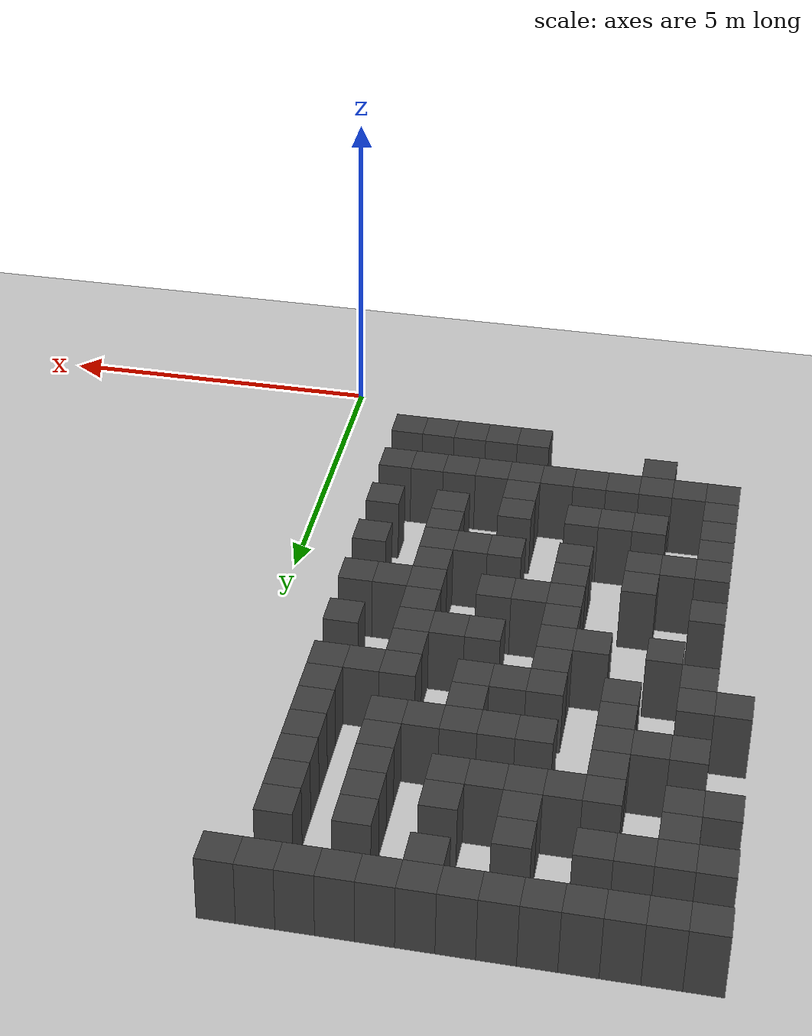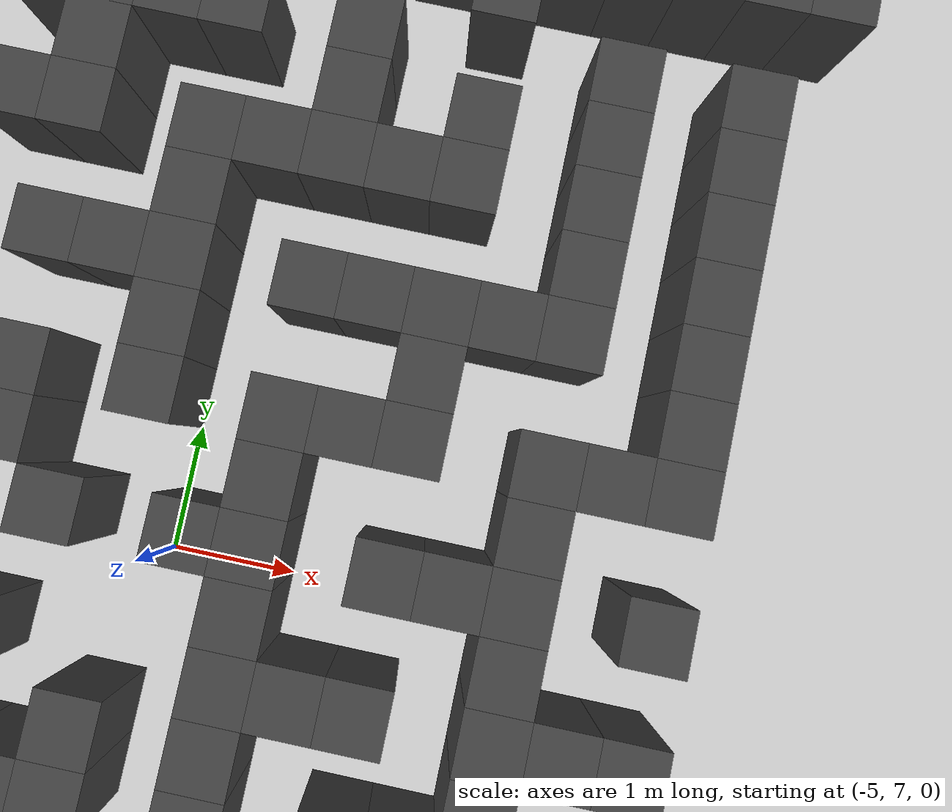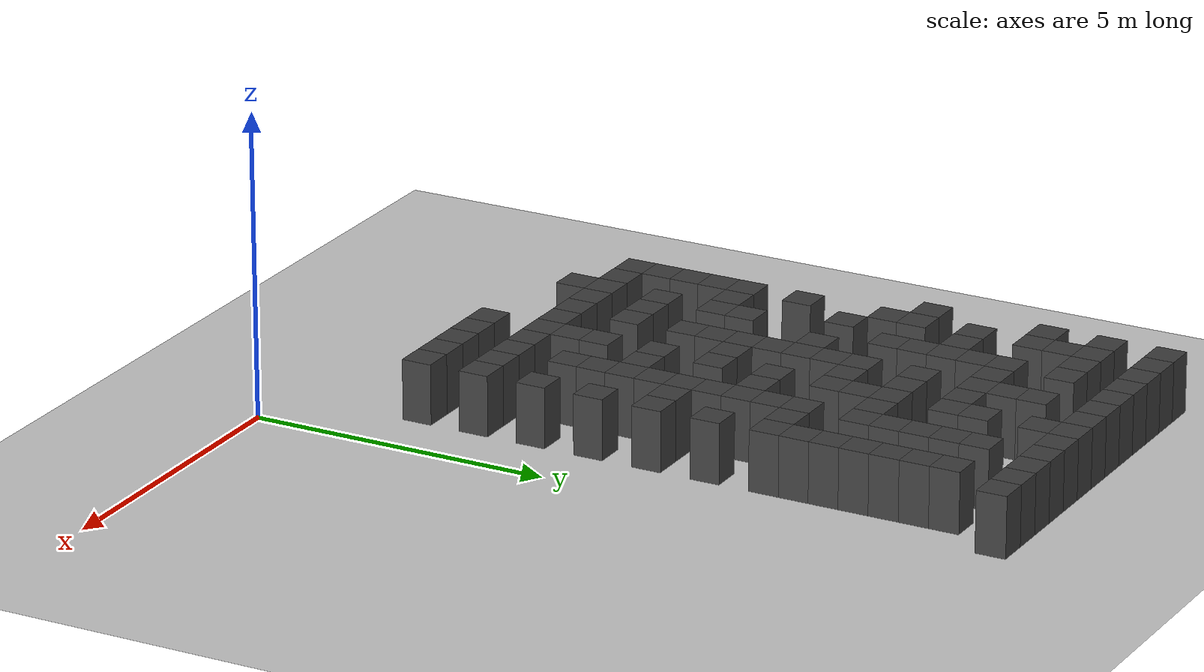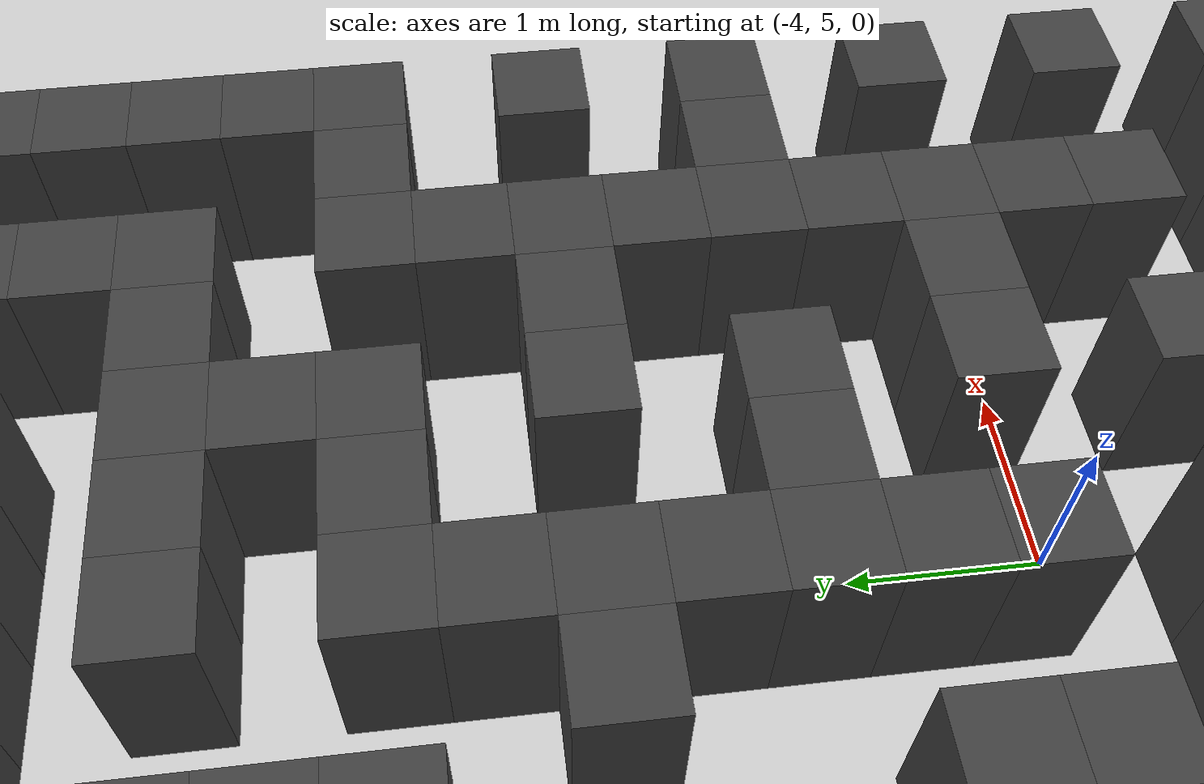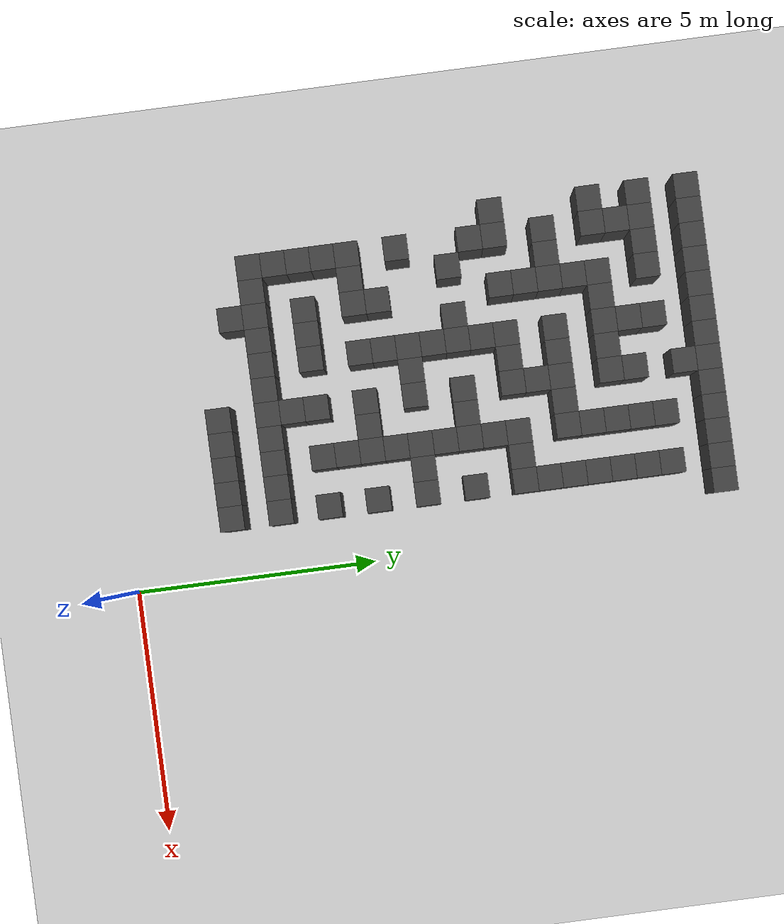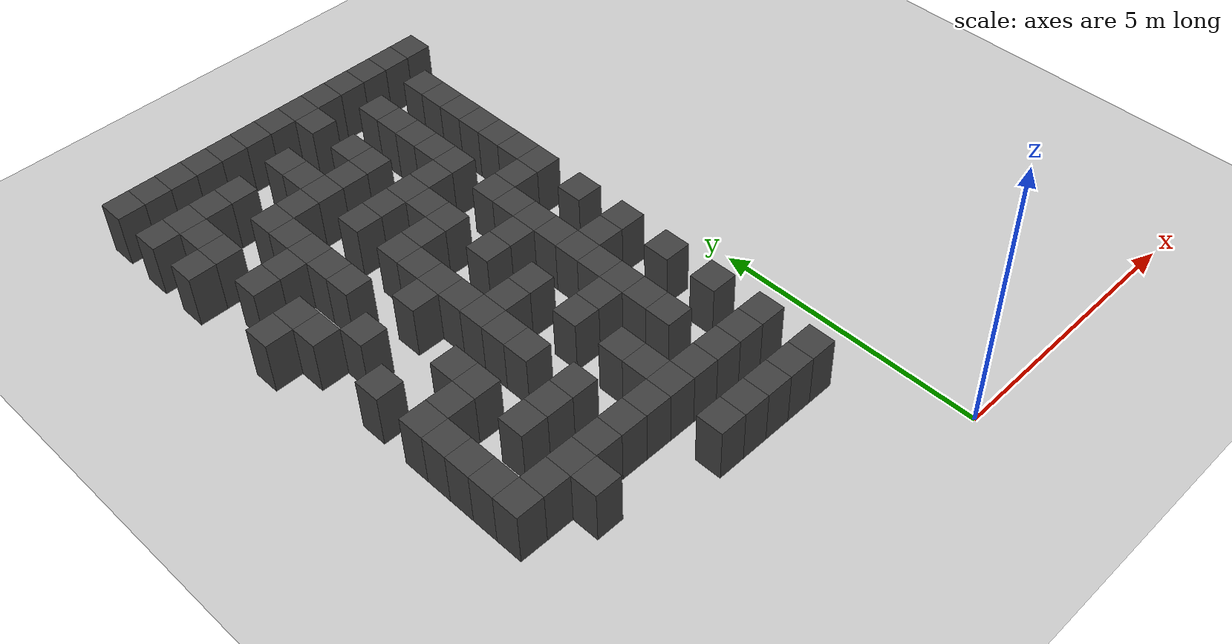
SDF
<sdf version="1.7">
 <world name="map_18228">
  <model name="ground_plane">
   <static>true</static>
   <link name="link">
    <collision name="collision">
     <geometry><plane><normal>0 0 1</normal><size>200 200</size></plane></geometry>
    </collision>
    <visual name="visual">
     <geometry><plane><normal>0 0 1</normal><size>200 200</size></plane></geometry>
     <material><ambient>0.8 0.8 0.8 1</ambient><diffuse>0.8 0.8 0.8 1</diffuse></material>
    </visual>
   </link>
  </model>
  <model name="maze_environment">
   <static>true</static>
   <link name="wall_11">
    <pose>-6.750 12.250 0.500 0 0 0</pose>
    <collision name="col"><geometry><box><size>0.5 0.5 1.0</size></box></geometry></collision>
    <visual name="vis">
     <geometry><box><size>0.5 0.5 1.0</size></box></geometry>
     <material><ambient>0.15 0.15 0.15 1</ambient><diffuse>0.25 0.25 0.25 1</diffuse></material>
    </visual>
   </link>
   <link name="wall_12">
    <pose>-6.250 12.250 0.500 0 0 0</pose>
    <collision name="col"><geometry><box><size>0.5 0.5 1.0</size></box></geometry></collision>
    <visual name="vis">
     <geometry><box><size>0.5 0.5 1.0</size></box></geometry>
     <material><ambient>0.15 0.15 0.15 1</ambient><diffuse>0.25 0.25 0.25 1</diffuse></material>
    </visual>
   </link>
   <link name="wall_13">
    <pose>-5.750 12.250 0.500 0 0 0</pose>
    <collision name="col"><geometry><box><size>0.5 0.5 1.0</size></box></geometry></collision>
    <visual name="vis">
     <geometry><box><size>0.5 0.5 1.0</size></box></geometry>
     <material><ambient>0.15 0.15 0.15 1</ambient><diffuse>0.25 0.25 0.25 1</diffuse></material>
    </visual>
   </link>
   <link name="wall_14">
    <pose>-5.250 12.250 0.500 0 0 0</pose>
    <collision name="col"><geometry><box><size>0.5 0.5 1.0</size></box></geometry></collision>
    <visual name="vis">
     <geometry><box><size>0.5 0.5 1.0</size></box></geometry>
     <material><ambient>0.15 0.15 0.15 1</ambient><diffuse>0.25 0.25 0.25 1</diffuse></material>
    </visual>
   </link>
   <link name="wall_15">
    <pose>-4.750 12.250 0.500 0 0 0</pose>
    <collision name="col"><geometry><box><size>0.5 0.5 1.0</size></box></geometry></collision>
    <visual name="vis">
     <geometry><box><size>0.5 0.5 1.0</size></box></geometry>
     <material><ambient>0.15 0.15 0.15 1</ambient><diffuse>0.25 0.25 0.25 1</diffuse></material>
    </visual>
   </link>
   <link name="wall_16">
    <pose>-4.250 12.250 0.500 0 0 0</pose>
    <collision name="col"><geometry><box><size>0.5 0.5 1.0</size></box></geometry></collision>
    <visual name="vis">
     <geometry><box><size>0.5 0.5 1.0</size></box></geometry>
     <material><ambient>0.15 0.15 0.15 1</ambient><diffuse>0.25 0.25 0.25 1</diffuse></material>
    </visual>
   </link>
   <link name="wall_17">
    <pose>-3.750 12.250 0.500 0 0 0</pose>
    <collision name="col"><geometry><box><size>0.5 0.5 1.0</size></box></geometry></collision>
    <visual name="vis">
     <geometry><box><size>0.5 0.5 1.0</size></box></geometry>
     <material><ambient>0.15 0.15 0.15 1</ambient><diffuse>0.25 0.25 0.25 1</diffuse></material>
    </visual>
   </link>
   <link name="wall_18">
    <pose>-3.250 12.250 0.500 0 0 0</pose>
    <collision name="col"><geometry><box><size>0.5 0.5 1.0</size></box></geometry></collision>
    <visual name="vis">
     <geometry><box><size>0.5 0.5 1.0</size></box></geometry>
     <material><ambient>0.15 0.15 0.15 1</ambient><diffuse>0.25 0.25 0.25 1</diffuse></material>
    </visual>
   </link>
   <link name="wall_19">
    <pose>-2.750 12.250 0.500 0 0 0</pose>
    <collision name="col"><geometry><box><size>0.5 0.5 1.0</size></box></geometry></collision>
    <visual name="vis">
     <geometry><box><size>0.5 0.5 1.0</size></box></geometry>
     <material><ambient>0.15 0.15 0.15 1</ambient><diffuse>0.25 0.25 0.25 1</diffuse></material>
    </visual>
   </link>
   <link name="wall_20">
    <pose>-2.250 12.250 0.500 0 0 0</pose>
    <collision name="col"><geometry><box><size>0.5 0.5 1.0</size></box></geometry></collision>
    <visual name="vis">
     <geometry><box><size>0.5 0.5 1.0</size></box></geometry>
     <material><ambient>0.15 0.15 0.15 1</ambient><diffuse>0.25 0.25 0.25 1</diffuse></material>
    </visual>
   </link>
   <link name="wall_21">
    <pose>-1.750 12.250 0.500 0 0 0</pose>
    <collision name="col"><geometry><box><size>0.5 0.5 1.0</size></box></geometry></collision>
    <visual name="vis">
     <geometry><box><size>0.5 0.5 1.0</size></box></geometry>
     <material><ambient>0.15 0.15 0.15 1</ambient><diffuse>0.25 0.25 0.25 1</diffuse></material>
    </visual>
   </link>
   <link name="wall_22">
    <pose>-1.250 12.250 0.500 0 0 0</pose>
    <collision name="col"><geometry><box><size>0.5 0.5 1.0</size></box></geometry></collision>
    <visual name="vis">
     <geometry><box><size>0.5 0.5 1.0</size></box></geometry>
     <material><ambient>0.15 0.15 0.15 1</ambient><diffuse>0.25 0.25 0.25 1</diffuse></material>
    </visual>
   </link>
   <link name="wall_23">
    <pose>-0.750 12.250 0.500 0 0 0</pose>
    <collision name="col"><geometry><box><size>0.5 0.5 1.0</size></box></geometry></collision>
    <visual name="vis">
     <geometry><box><size>0.5 0.5 1.0</size></box></geometry>
     <material><ambient>0.15 0.15 0.15 1</ambient><diffuse>0.25 0.25 0.25 1</diffuse></material>
    </visual>
   </link>
   <link name="wall_52">
    <pose>-3.250 11.750 0.500 0 0 0</pose>
    <collision name="col"><geometry><box><size>0.5 0.5 1.0</size></box></geometry></collision>
    <visual name="vis">
     <geometry><box><size>0.5 0.5 1.0</size></box></geometry>
     <material><ambient>0.15 0.15 0.15 1</ambient><diffuse>0.25 0.25 0.25 1</diffuse></material>
    </visual>
   </link>
   <link name="wall_66">
    <pose>-6.750 11.250 0.500 0 0 0</pose>
    <collision name="col"><geometry><box><size>0.5 0.5 1.0</size></box></geometry></collision>
    <visual name="vis">
     <geometry><box><size>0.5 0.5 1.0</size></box></geometry>
     <material><ambient>0.15 0.15 0.15 1</ambient><diffuse>0.25 0.25 0.25 1</diffuse></material>
    </visual>
   </link>
   <link name="wall_67">
    <pose>-6.250 11.250 0.500 0 0 0</pose>
    <collision name="col"><geometry><box><size>0.5 0.5 1.0</size></box></geometry></collision>
    <visual name="vis">
     <geometry><box><size>0.5 0.5 1.0</size></box></geometry>
     <material><ambient>0.15 0.15 0.15 1</ambient><diffuse>0.25 0.25 0.25 1</diffuse></material>
    </visual>
   </link>
   <link name="wall_68">
    <pose>-5.750 11.250 0.500 0 0 0</pose>
    <collision name="col"><geometry><box><size>0.5 0.5 1.0</size></box></geometry></collision>
    <visual name="vis">
     <geometry><box><size>0.5 0.5 1.0</size></box></geometry>
     <material><ambient>0.15 0.15 0.15 1</ambient><diffuse>0.25 0.25 0.25 1</diffuse></material>
    </visual>
   </link>
   <link name="wall_69">
    <pose>-5.250 11.250 0.500 0 0 0</pose>
    <collision name="col"><geometry><box><size>0.5 0.5 1.0</size></box></geometry></collision>
    <visual name="vis">
     <geometry><box><size>0.5 0.5 1.0</size></box></geometry>
     <material><ambient>0.15 0.15 0.15 1</ambient><diffuse>0.25 0.25 0.25 1</diffuse></material>
    </visual>
   </link>
   <link name="wall_70">
    <pose>-4.250 11.250 0.500 0 0 0</pose>
    <collision name="col"><geometry><box><size>0.5 0.5 1.0</size></box></geometry></collision>
    <visual name="vis">
     <geometry><box><size>0.5 0.5 1.0</size></box></geometry>
     <material><ambient>0.15 0.15 0.15 1</ambient><diffuse>0.25 0.25 0.25 1</diffuse></material>
    </visual>
   </link>
   <link name="wall_71">
    <pose>-2.250 11.250 0.500 0 0 0</pose>
    <collision name="col"><geometry><box><size>0.5 0.5 1.0</size></box></geometry></collision>
    <visual name="vis">
     <geometry><box><size>0.5 0.5 1.0</size></box></geometry>
     <material><ambient>0.15 0.15 0.15 1</ambient><diffuse>0.25 0.25 0.25 1</diffuse></material>
    </visual>
   </link>
   <link name="wall_72">
    <pose>-1.250 11.250 0.500 0 0 0</pose>
    <collision name="col"><geometry><box><size>0.5 0.5 1.0</size></box></geometry></collision>
    <visual name="vis">
     <geometry><box><size>0.5 0.5 1.0</size></box></geometry>
     <material><ambient>0.15 0.15 0.15 1</ambient><diffuse>0.25 0.25 0.25 1</diffuse></material>
    </visual>
   </link>
   <link name="wall_96">
    <pose>-6.250 10.750 0.500 0 0 0</pose>
    <collision name="col"><geometry><box><size>0.5 0.5 1.0</size></box></geometry></collision>
    <visual name="vis">
     <geometry><box><size>0.5 0.5 1.0</size></box></geometry>
     <material><ambient>0.15 0.15 0.15 1</ambient><diffuse>0.25 0.25 0.25 1</diffuse></material>
    </visual>
   </link>
   <link name="wall_97">
    <pose>-4.250 10.750 0.500 0 0 0</pose>
    <collision name="col"><geometry><box><size>0.5 0.5 1.0</size></box></geometry></collision>
    <visual name="vis">
     <geometry><box><size>0.5 0.5 1.0</size></box></geometry>
     <material><ambient>0.15 0.15 0.15 1</ambient><diffuse>0.25 0.25 0.25 1</diffuse></material>
    </visual>
   </link>
   <link name="wall_98">
    <pose>-3.250 10.750 0.500 0 0 0</pose>
    <collision name="col"><geometry><box><size>0.5 0.5 1.0</size></box></geometry></collision>
    <visual name="vis">
     <geometry><box><size>0.5 0.5 1.0</size></box></geometry>
     <material><ambient>0.15 0.15 0.15 1</ambient><diffuse>0.25 0.25 0.25 1</diffuse></material>
    </visual>
   </link>
   <link name="wall_99">
    <pose>-2.250 10.750 0.500 0 0 0</pose>
    <collision name="col"><geometry><box><size>0.5 0.5 1.0</size></box></geometry></collision>
    <visual name="vis">
     <geometry><box><size>0.5 0.5 1.0</size></box></geometry>
     <material><ambient>0.15 0.15 0.15 1</ambient><diffuse>0.25 0.25 0.25 1</diffuse></material>
    </visual>
   </link>
   <link name="wall_100">
    <pose>-1.250 10.750 0.500 0 0 0</pose>
    <collision name="col"><geometry><box><size>0.5 0.5 1.0</size></box></geometry></collision>
    <visual name="vis">
     <geometry><box><size>0.5 0.5 1.0</size></box></geometry>
     <material><ambient>0.15 0.15 0.15 1</ambient><diffuse>0.25 0.25 0.25 1</diffuse></material>
    </visual>
   </link>
   <link name="wall_116">
    <pose>-6.750 10.250 0.500 0 0 0</pose>
    <collision name="col"><geometry><box><size>0.5 0.5 1.0</size></box></geometry></collision>
    <visual name="vis">
     <geometry><box><size>0.5 0.5 1.0</size></box></geometry>
     <material><ambient>0.15 0.15 0.15 1</ambient><diffuse>0.25 0.25 0.25 1</diffuse></material>
    </visual>
   </link>
   <link name="wall_117">
    <pose>-6.250 10.250 0.500 0 0 0</pose>
    <collision name="col"><geometry><box><size>0.5 0.5 1.0</size></box></geometry></collision>
    <visual name="vis">
     <geometry><box><size>0.5 0.5 1.0</size></box></geometry>
     <material><ambient>0.15 0.15 0.15 1</ambient><diffuse>0.25 0.25 0.25 1</diffuse></material>
    </visual>
   </link>
   <link name="wall_118">
    <pose>-5.250 10.250 0.500 0 0 0</pose>
    <collision name="col"><geometry><box><size>0.5 0.5 1.0</size></box></geometry></collision>
    <visual name="vis">
     <geometry><box><size>0.5 0.5 1.0</size></box></geometry>
     <material><ambient>0.15 0.15 0.15 1</ambient><diffuse>0.25 0.25 0.25 1</diffuse></material>
    </visual>
   </link>
   <link name="wall_119">
    <pose>-4.750 10.250 0.500 0 0 0</pose>
    <collision name="col"><geometry><box><size>0.5 0.5 1.0</size></box></geometry></collision>
    <visual name="vis">
     <geometry><box><size>0.5 0.5 1.0</size></box></geometry>
     <material><ambient>0.15 0.15 0.15 1</ambient><diffuse>0.25 0.25 0.25 1</diffuse></material>
    </visual>
   </link>
   <link name="wall_120">
    <pose>-4.250 10.250 0.500 0 0 0</pose>
    <collision name="col"><geometry><box><size>0.5 0.5 1.0</size></box></geometry></collision>
    <visual name="vis">
     <geometry><box><size>0.5 0.5 1.0</size></box></geometry>
     <material><ambient>0.15 0.15 0.15 1</ambient><diffuse>0.25 0.25 0.25 1</diffuse></material>
    </visual>
   </link>
   <link name="wall_121">
    <pose>-3.750 10.250 0.500 0 0 0</pose>
    <collision name="col"><geometry><box><size>0.5 0.5 1.0</size></box></geometry></collision>
    <visual name="vis">
     <geometry><box><size>0.5 0.5 1.0</size></box></geometry>
     <material><ambient>0.15 0.15 0.15 1</ambient><diffuse>0.25 0.25 0.25 1</diffuse></material>
    </visual>
   </link>
   <link name="wall_122">
    <pose>-3.250 10.250 0.500 0 0 0</pose>
    <collision name="col"><geometry><box><size>0.5 0.5 1.0</size></box></geometry></collision>
    <visual name="vis">
     <geometry><box><size>0.5 0.5 1.0</size></box></geometry>
     <material><ambient>0.15 0.15 0.15 1</ambient><diffuse>0.25 0.25 0.25 1</diffuse></material>
    </visual>
   </link>
   <link name="wall_123">
    <pose>-2.250 10.250 0.500 0 0 0</pose>
    <collision name="col"><geometry><box><size>0.5 0.5 1.0</size></box></geometry></collision>
    <visual name="vis">
     <geometry><box><size>0.5 0.5 1.0</size></box></geometry>
     <material><ambient>0.15 0.15 0.15 1</ambient><diffuse>0.25 0.25 0.25 1</diffuse></material>
    </visual>
   </link>
   <link name="wall_124">
    <pose>-1.250 10.250 0.500 0 0 0</pose>
    <collision name="col"><geometry><box><size>0.5 0.5 1.0</size></box></geometry></collision>
    <visual name="vis">
     <geometry><box><size>0.5 0.5 1.0</size></box></geometry>
     <material><ambient>0.15 0.15 0.15 1</ambient><diffuse>0.25 0.25 0.25 1</diffuse></material>
    </visual>
   </link>
   <link name="wall_149">
    <pose>-5.250 9.750 0.500 0 0 0</pose>
    <collision name="col"><geometry><box><size>0.5 0.5 1.0</size></box></geometry></collision>
    <visual name="vis">
     <geometry><box><size>0.5 0.5 1.0</size></box></geometry>
     <material><ambient>0.15 0.15 0.15 1</ambient><diffuse>0.25 0.25 0.25 1</diffuse></material>
    </visual>
   </link>
   <link name="wall_150">
    <pose>-2.250 9.750 0.500 0 0 0</pose>
    <collision name="col"><geometry><box><size>0.5 0.5 1.0</size></box></geometry></collision>
    <visual name="vis">
     <geometry><box><size>0.5 0.5 1.0</size></box></geometry>
     <material><ambient>0.15 0.15 0.15 1</ambient><diffuse>0.25 0.25 0.25 1</diffuse></material>
    </visual>
   </link>
   <link name="wall_151">
    <pose>-1.250 9.750 0.500 0 0 0</pose>
    <collision name="col"><geometry><box><size>0.5 0.5 1.0</size></box></geometry></collision>
    <visual name="vis">
     <geometry><box><size>0.5 0.5 1.0</size></box></geometry>
     <material><ambient>0.15 0.15 0.15 1</ambient><diffuse>0.25 0.25 0.25 1</diffuse></material>
    </visual>
   </link>
   <link name="wall_168">
    <pose>-6.250 9.250 0.500 0 0 0</pose>
    <collision name="col"><geometry><box><size>0.5 0.5 1.0</size></box></geometry></collision>
    <visual name="vis">
     <geometry><box><size>0.5 0.5 1.0</size></box></geometry>
     <material><ambient>0.15 0.15 0.15 1</ambient><diffuse>0.25 0.25 0.25 1</diffuse></material>
    </visual>
   </link>
   <link name="wall_169">
    <pose>-5.750 9.250 0.500 0 0 0</pose>
    <collision name="col"><geometry><box><size>0.5 0.5 1.0</size></box></geometry></collision>
    <visual name="vis">
     <geometry><box><size>0.5 0.5 1.0</size></box></geometry>
     <material><ambient>0.15 0.15 0.15 1</ambient><diffuse>0.25 0.25 0.25 1</diffuse></material>
    </visual>
   </link>
   <link name="wall_170">
    <pose>-5.250 9.250 0.500 0 0 0</pose>
    <collision name="col"><geometry><box><size>0.5 0.5 1.0</size></box></geometry></collision>
    <visual name="vis">
     <geometry><box><size>0.5 0.5 1.0</size></box></geometry>
     <material><ambient>0.15 0.15 0.15 1</ambient><diffuse>0.25 0.25 0.25 1</diffuse></material>
    </visual>
   </link>
   <link name="wall_171">
    <pose>-4.250 9.250 0.500 0 0 0</pose>
    <collision name="col"><geometry><box><size>0.5 0.5 1.0</size></box></geometry></collision>
    <visual name="vis">
     <geometry><box><size>0.5 0.5 1.0</size></box></geometry>
     <material><ambient>0.15 0.15 0.15 1</ambient><diffuse>0.25 0.25 0.25 1</diffuse></material>
    </visual>
   </link>
   <link name="wall_172">
    <pose>-3.750 9.250 0.500 0 0 0</pose>
    <collision name="col"><geometry><box><size>0.5 0.5 1.0</size></box></geometry></collision>
    <visual name="vis">
     <geometry><box><size>0.5 0.5 1.0</size></box></geometry>
     <material><ambient>0.15 0.15 0.15 1</ambient><diffuse>0.25 0.25 0.25 1</diffuse></material>
    </visual>
   </link>
   <link name="wall_173">
    <pose>-3.250 9.250 0.500 0 0 0</pose>
    <collision name="col"><geometry><box><size>0.5 0.5 1.0</size></box></geometry></collision>
    <visual name="vis">
     <geometry><box><size>0.5 0.5 1.0</size></box></geometry>
     <material><ambient>0.15 0.15 0.15 1</ambient><diffuse>0.25 0.25 0.25 1</diffuse></material>
    </visual>
   </link>
   <link name="wall_174">
    <pose>-2.750 9.250 0.500 0 0 0</pose>
    <collision name="col"><geometry><box><size>0.5 0.5 1.0</size></box></geometry></collision>
    <visual name="vis">
     <geometry><box><size>0.5 0.5 1.0</size></box></geometry>
     <material><ambient>0.15 0.15 0.15 1</ambient><diffuse>0.25 0.25 0.25 1</diffuse></material>
    </visual>
   </link>
   <link name="wall_175">
    <pose>-2.250 9.250 0.500 0 0 0</pose>
    <collision name="col"><geometry><box><size>0.5 0.5 1.0</size></box></geometry></collision>
    <visual name="vis">
     <geometry><box><size>0.5 0.5 1.0</size></box></geometry>
     <material><ambient>0.15 0.15 0.15 1</ambient><diffuse>0.25 0.25 0.25 1</diffuse></material>
    </visual>
   </link>
   <link name="wall_176">
    <pose>-1.250 9.250 0.500 0 0 0</pose>
    <collision name="col"><geometry><box><size>0.5 0.5 1.0</size></box></geometry></collision>
    <visual name="vis">
     <geometry><box><size>0.5 0.5 1.0</size></box></geometry>
     <material><ambient>0.15 0.15 0.15 1</ambient><diffuse>0.25 0.25 0.25 1</diffuse></material>
    </visual>
   </link>
   <link name="wall_195">
    <pose>-5.250 8.750 0.500 0 0 0</pose>
    <collision name="col"><geometry><box><size>0.5 0.5 1.0</size></box></geometry></collision>
    <visual name="vis">
     <geometry><box><size>0.5 0.5 1.0</size></box></geometry>
     <material><ambient>0.15 0.15 0.15 1</ambient><diffuse>0.25 0.25 0.25 1</diffuse></material>
    </visual>
   </link>
   <link name="wall_196">
    <pose>-3.250 8.750 0.500 0 0 0</pose>
    <collision name="col"><geometry><box><size>0.5 0.5 1.0</size></box></geometry></collision>
    <visual name="vis">
     <geometry><box><size>0.5 0.5 1.0</size></box></geometry>
     <material><ambient>0.15 0.15 0.15 1</ambient><diffuse>0.25 0.25 0.25 1</diffuse></material>
    </visual>
   </link>
   <link name="wall_197">
    <pose>-1.250 8.750 0.500 0 0 0</pose>
    <collision name="col"><geometry><box><size>0.5 0.5 1.0</size></box></geometry></collision>
    <visual name="vis">
     <geometry><box><size>0.5 0.5 1.0</size></box></geometry>
     <material><ambient>0.15 0.15 0.15 1</ambient><diffuse>0.25 0.25 0.25 1</diffuse></material>
    </visual>
   </link>
   <link name="wall_216">
    <pose>-6.750 8.250 0.500 0 0 0</pose>
    <collision name="col"><geometry><box><size>0.5 0.5 1.0</size></box></geometry></collision>
    <visual name="vis">
     <geometry><box><size>0.5 0.5 1.0</size></box></geometry>
     <material><ambient>0.15 0.15 0.15 1</ambient><diffuse>0.25 0.25 0.25 1</diffuse></material>
    </visual>
   </link>
   <link name="wall_217">
    <pose>-6.250 8.250 0.500 0 0 0</pose>
    <collision name="col"><geometry><box><size>0.5 0.5 1.0</size></box></geometry></collision>
    <visual name="vis">
     <geometry><box><size>0.5 0.5 1.0</size></box></geometry>
     <material><ambient>0.15 0.15 0.15 1</ambient><diffuse>0.25 0.25 0.25 1</diffuse></material>
    </visual>
   </link>
   <link name="wall_218">
    <pose>-5.250 8.250 0.500 0 0 0</pose>
    <collision name="col"><geometry><box><size>0.5 0.5 1.0</size></box></geometry></collision>
    <visual name="vis">
     <geometry><box><size>0.5 0.5 1.0</size></box></geometry>
     <material><ambient>0.15 0.15 0.15 1</ambient><diffuse>0.25 0.25 0.25 1</diffuse></material>
    </visual>
   </link>
   <link name="wall_219">
    <pose>-4.250 8.250 0.500 0 0 0</pose>
    <collision name="col"><geometry><box><size>0.5 0.5 1.0</size></box></geometry></collision>
    <visual name="vis">
     <geometry><box><size>0.5 0.5 1.0</size></box></geometry>
     <material><ambient>0.15 0.15 0.15 1</ambient><diffuse>0.25 0.25 0.25 1</diffuse></material>
    </visual>
   </link>
   <link name="wall_220">
    <pose>-3.750 8.250 0.500 0 0 0</pose>
    <collision name="col"><geometry><box><size>0.5 0.5 1.0</size></box></geometry></collision>
    <visual name="vis">
     <geometry><box><size>0.5 0.5 1.0</size></box></geometry>
     <material><ambient>0.15 0.15 0.15 1</ambient><diffuse>0.25 0.25 0.25 1</diffuse></material>
    </visual>
   </link>
   <link name="wall_221">
    <pose>-3.250 8.250 0.500 0 0 0</pose>
    <collision name="col"><geometry><box><size>0.5 0.5 1.0</size></box></geometry></collision>
    <visual name="vis">
     <geometry><box><size>0.5 0.5 1.0</size></box></geometry>
     <material><ambient>0.15 0.15 0.15 1</ambient><diffuse>0.25 0.25 0.25 1</diffuse></material>
    </visual>
   </link>
   <link name="wall_222">
    <pose>-2.250 8.250 0.500 0 0 0</pose>
    <collision name="col"><geometry><box><size>0.5 0.5 1.0</size></box></geometry></collision>
    <visual name="vis">
     <geometry><box><size>0.5 0.5 1.0</size></box></geometry>
     <material><ambient>0.15 0.15 0.15 1</ambient><diffuse>0.25 0.25 0.25 1</diffuse></material>
    </visual>
   </link>
   <link name="wall_223">
    <pose>-1.750 8.250 0.500 0 0 0</pose>
    <collision name="col"><geometry><box><size>0.5 0.5 1.0</size></box></geometry></collision>
    <visual name="vis">
     <geometry><box><size>0.5 0.5 1.0</size></box></geometry>
     <material><ambient>0.15 0.15 0.15 1</ambient><diffuse>0.25 0.25 0.25 1</diffuse></material>
    </visual>
   </link>
   <link name="wall_224">
    <pose>-1.250 8.250 0.500 0 0 0</pose>
    <collision name="col"><geometry><box><size>0.5 0.5 1.0</size></box></geometry></collision>
    <visual name="vis">
     <geometry><box><size>0.5 0.5 1.0</size></box></geometry>
     <material><ambient>0.15 0.15 0.15 1</ambient><diffuse>0.25 0.25 0.25 1</diffuse></material>
    </visual>
   </link>
   <link name="wall_246">
    <pose>-6.250 7.750 0.500 0 0 0</pose>
    <collision name="col"><geometry><box><size>0.5 0.5 1.0</size></box></geometry></collision>
    <visual name="vis">
     <geometry><box><size>0.5 0.5 1.0</size></box></geometry>
     <material><ambient>0.15 0.15 0.15 1</ambient><diffuse>0.25 0.25 0.25 1</diffuse></material>
    </visual>
   </link>
   <link name="wall_247">
    <pose>-4.250 7.750 0.500 0 0 0</pose>
    <collision name="col"><geometry><box><size>0.5 0.5 1.0</size></box></geometry></collision>
    <visual name="vis">
     <geometry><box><size>0.5 0.5 1.0</size></box></geometry>
     <material><ambient>0.15 0.15 0.15 1</ambient><diffuse>0.25 0.25 0.25 1</diffuse></material>
    </visual>
   </link>
   <link name="wall_248">
    <pose>-2.250 7.750 0.500 0 0 0</pose>
    <collision name="col"><geometry><box><size>0.5 0.5 1.0</size></box></geometry></collision>
    <visual name="vis">
     <geometry><box><size>0.5 0.5 1.0</size></box></geometry>
     <material><ambient>0.15 0.15 0.15 1</ambient><diffuse>0.25 0.25 0.25 1</diffuse></material>
    </visual>
   </link>
   <link name="wall_266">
    <pose>-5.750 7.250 0.500 0 0 0</pose>
    <collision name="col"><geometry><box><size>0.5 0.5 1.0</size></box></geometry></collision>
    <visual name="vis">
     <geometry><box><size>0.5 0.5 1.0</size></box></geometry>
     <material><ambient>0.15 0.15 0.15 1</ambient><diffuse>0.25 0.25 0.25 1</diffuse></material>
    </visual>
   </link>
   <link name="wall_267">
    <pose>-4.750 7.250 0.500 0 0 0</pose>
    <collision name="col"><geometry><box><size>0.5 0.5 1.0</size></box></geometry></collision>
    <visual name="vis">
     <geometry><box><size>0.5 0.5 1.0</size></box></geometry>
     <material><ambient>0.15 0.15 0.15 1</ambient><diffuse>0.25 0.25 0.25 1</diffuse></material>
    </visual>
   </link>
   <link name="wall_268">
    <pose>-4.250 7.250 0.500 0 0 0</pose>
    <collision name="col"><geometry><box><size>0.5 0.5 1.0</size></box></geometry></collision>
    <visual name="vis">
     <geometry><box><size>0.5 0.5 1.0</size></box></geometry>
     <material><ambient>0.15 0.15 0.15 1</ambient><diffuse>0.25 0.25 0.25 1</diffuse></material>
    </visual>
   </link>
   <link name="wall_269">
    <pose>-3.250 7.250 0.500 0 0 0</pose>
    <collision name="col"><geometry><box><size>0.5 0.5 1.0</size></box></geometry></collision>
    <visual name="vis">
     <geometry><box><size>0.5 0.5 1.0</size></box></geometry>
     <material><ambient>0.15 0.15 0.15 1</ambient><diffuse>0.25 0.25 0.25 1</diffuse></material>
    </visual>
   </link>
   <link name="wall_270">
    <pose>-2.750 7.250 0.500 0 0 0</pose>
    <collision name="col"><geometry><box><size>0.5 0.5 1.0</size></box></geometry></collision>
    <visual name="vis">
     <geometry><box><size>0.5 0.5 1.0</size></box></geometry>
     <material><ambient>0.15 0.15 0.15 1</ambient><diffuse>0.25 0.25 0.25 1</diffuse></material>
    </visual>
   </link>
   <link name="wall_271">
    <pose>-2.250 7.250 0.500 0 0 0</pose>
    <collision name="col"><geometry><box><size>0.5 0.5 1.0</size></box></geometry></collision>
    <visual name="vis">
     <geometry><box><size>0.5 0.5 1.0</size></box></geometry>
     <material><ambient>0.15 0.15 0.15 1</ambient><diffuse>0.25 0.25 0.25 1</diffuse></material>
    </visual>
   </link>
   <link name="wall_272">
    <pose>-1.250 7.250 0.500 0 0 0</pose>
    <collision name="col"><geometry><box><size>0.5 0.5 1.0</size></box></geometry></collision>
    <visual name="vis">
     <geometry><box><size>0.5 0.5 1.0</size></box></geometry>
     <material><ambient>0.15 0.15 0.15 1</ambient><diffuse>0.25 0.25 0.25 1</diffuse></material>
    </visual>
   </link>
   <link name="wall_293">
    <pose>-4.250 6.750 0.500 0 0 0</pose>
    <collision name="col"><geometry><box><size>0.5 0.5 1.0</size></box></geometry></collision>
    <visual name="vis">
     <geometry><box><size>0.5 0.5 1.0</size></box></geometry>
     <material><ambient>0.15 0.15 0.15 1</ambient><diffuse>0.25 0.25 0.25 1</diffuse></material>
    </visual>
   </link>
   <link name="wall_294">
    <pose>-2.250 6.750 0.500 0 0 0</pose>
    <collision name="col"><geometry><box><size>0.5 0.5 1.0</size></box></geometry></collision>
    <visual name="vis">
     <geometry><box><size>0.5 0.5 1.0</size></box></geometry>
     <material><ambient>0.15 0.15 0.15 1</ambient><diffuse>0.25 0.25 0.25 1</diffuse></material>
    </visual>
   </link>
   <link name="wall_310">
    <pose>-6.250 6.250 0.500 0 0 0</pose>
    <collision name="col"><geometry><box><size>0.5 0.5 1.0</size></box></geometry></collision>
    <visual name="vis">
     <geometry><box><size>0.5 0.5 1.0</size></box></geometry>
     <material><ambient>0.15 0.15 0.15 1</ambient><diffuse>0.25 0.25 0.25 1</diffuse></material>
    </visual>
   </link>
   <link name="wall_311">
    <pose>-4.250 6.250 0.500 0 0 0</pose>
    <collision name="col"><geometry><box><size>0.5 0.5 1.0</size></box></geometry></collision>
    <visual name="vis">
     <geometry><box><size>0.5 0.5 1.0</size></box></geometry>
     <material><ambient>0.15 0.15 0.15 1</ambient><diffuse>0.25 0.25 0.25 1</diffuse></material>
    </visual>
   </link>
   <link name="wall_312">
    <pose>-3.750 6.250 0.500 0 0 0</pose>
    <collision name="col"><geometry><box><size>0.5 0.5 1.0</size></box></geometry></collision>
    <visual name="vis">
     <geometry><box><size>0.5 0.5 1.0</size></box></geometry>
     <material><ambient>0.15 0.15 0.15 1</ambient><diffuse>0.25 0.25 0.25 1</diffuse></material>
    </visual>
   </link>
   <link name="wall_313">
    <pose>-3.250 6.250 0.500 0 0 0</pose>
    <collision name="col"><geometry><box><size>0.5 0.5 1.0</size></box></geometry></collision>
    <visual name="vis">
     <geometry><box><size>0.5 0.5 1.0</size></box></geometry>
     <material><ambient>0.15 0.15 0.15 1</ambient><diffuse>0.25 0.25 0.25 1</diffuse></material>
    </visual>
   </link>
   <link name="wall_314">
    <pose>-2.250 6.250 0.500 0 0 0</pose>
    <collision name="col"><geometry><box><size>0.5 0.5 1.0</size></box></geometry></collision>
    <visual name="vis">
     <geometry><box><size>0.5 0.5 1.0</size></box></geometry>
     <material><ambient>0.15 0.15 0.15 1</ambient><diffuse>0.25 0.25 0.25 1</diffuse></material>
    </visual>
   </link>
   <link name="wall_315">
    <pose>-1.750 6.250 0.500 0 0 0</pose>
    <collision name="col"><geometry><box><size>0.5 0.5 1.0</size></box></geometry></collision>
    <visual name="vis">
     <geometry><box><size>0.5 0.5 1.0</size></box></geometry>
     <material><ambient>0.15 0.15 0.15 1</ambient><diffuse>0.25 0.25 0.25 1</diffuse></material>
    </visual>
   </link>
   <link name="wall_316">
    <pose>-1.250 6.250 0.500 0 0 0</pose>
    <collision name="col"><geometry><box><size>0.5 0.5 1.0</size></box></geometry></collision>
    <visual name="vis">
     <geometry><box><size>0.5 0.5 1.0</size></box></geometry>
     <material><ambient>0.15 0.15 0.15 1</ambient><diffuse>0.25 0.25 0.25 1</diffuse></material>
    </visual>
   </link>
   <link name="wall_343">
    <pose>-5.250 5.750 0.500 0 0 0</pose>
    <collision name="col"><geometry><box><size>0.5 0.5 1.0</size></box></geometry></collision>
    <visual name="vis">
     <geometry><box><size>0.5 0.5 1.0</size></box></geometry>
     <material><ambient>0.15 0.15 0.15 1</ambient><diffuse>0.25 0.25 0.25 1</diffuse></material>
    </visual>
   </link>
   <link name="wall_344">
    <pose>-4.250 5.750 0.500 0 0 0</pose>
    <collision name="col"><geometry><box><size>0.5 0.5 1.0</size></box></geometry></collision>
    <visual name="vis">
     <geometry><box><size>0.5 0.5 1.0</size></box></geometry>
     <material><ambient>0.15 0.15 0.15 1</ambient><diffuse>0.25 0.25 0.25 1</diffuse></material>
    </visual>
   </link>
   <link name="wall_345">
    <pose>-2.250 5.750 0.500 0 0 0</pose>
    <collision name="col"><geometry><box><size>0.5 0.5 1.0</size></box></geometry></collision>
    <visual name="vis">
     <geometry><box><size>0.5 0.5 1.0</size></box></geometry>
     <material><ambient>0.15 0.15 0.15 1</ambient><diffuse>0.25 0.25 0.25 1</diffuse></material>
    </visual>
   </link>
   <link name="wall_360">
    <pose>-6.250 5.250 0.500 0 0 0</pose>
    <collision name="col"><geometry><box><size>0.5 0.5 1.0</size></box></geometry></collision>
    <visual name="vis">
     <geometry><box><size>0.5 0.5 1.0</size></box></geometry>
     <material><ambient>0.15 0.15 0.15 1</ambient><diffuse>0.25 0.25 0.25 1</diffuse></material>
    </visual>
   </link>
   <link name="wall_361">
    <pose>-5.750 5.250 0.500 0 0 0</pose>
    <collision name="col"><geometry><box><size>0.5 0.5 1.0</size></box></geometry></collision>
    <visual name="vis">
     <geometry><box><size>0.5 0.5 1.0</size></box></geometry>
     <material><ambient>0.15 0.15 0.15 1</ambient><diffuse>0.25 0.25 0.25 1</diffuse></material>
    </visual>
   </link>
   <link name="wall_362">
    <pose>-5.250 5.250 0.500 0 0 0</pose>
    <collision name="col"><geometry><box><size>0.5 0.5 1.0</size></box></geometry></collision>
    <visual name="vis">
     <geometry><box><size>0.5 0.5 1.0</size></box></geometry>
     <material><ambient>0.15 0.15 0.15 1</ambient><diffuse>0.25 0.25 0.25 1</diffuse></material>
    </visual>
   </link>
   <link name="wall_363">
    <pose>-4.250 5.250 0.500 0 0 0</pose>
    <collision name="col"><geometry><box><size>0.5 0.5 1.0</size></box></geometry></collision>
    <visual name="vis">
     <geometry><box><size>0.5 0.5 1.0</size></box></geometry>
     <material><ambient>0.15 0.15 0.15 1</ambient><diffuse>0.25 0.25 0.25 1</diffuse></material>
    </visual>
   </link>
   <link name="wall_364">
    <pose>-3.250 5.250 0.500 0 0 0</pose>
    <collision name="col"><geometry><box><size>0.5 0.5 1.0</size></box></geometry></collision>
    <visual name="vis">
     <geometry><box><size>0.5 0.5 1.0</size></box></geometry>
     <material><ambient>0.15 0.15 0.15 1</ambient><diffuse>0.25 0.25 0.25 1</diffuse></material>
    </visual>
   </link>
   <link name="wall_365">
    <pose>-2.750 5.250 0.500 0 0 0</pose>
    <collision name="col"><geometry><box><size>0.5 0.5 1.0</size></box></geometry></collision>
    <visual name="vis">
     <geometry><box><size>0.5 0.5 1.0</size></box></geometry>
     <material><ambient>0.15 0.15 0.15 1</ambient><diffuse>0.25 0.25 0.25 1</diffuse></material>
    </visual>
   </link>
   <link name="wall_366">
    <pose>-2.250 5.250 0.500 0 0 0</pose>
    <collision name="col"><geometry><box><size>0.5 0.5 1.0</size></box></geometry></collision>
    <visual name="vis">
     <geometry><box><size>0.5 0.5 1.0</size></box></geometry>
     <material><ambient>0.15 0.15 0.15 1</ambient><diffuse>0.25 0.25 0.25 1</diffuse></material>
    </visual>
   </link>
   <link name="wall_367">
    <pose>-1.250 5.250 0.500 0 0 0</pose>
    <collision name="col"><geometry><box><size>0.5 0.5 1.0</size></box></geometry></collision>
    <visual name="vis">
     <geometry><box><size>0.5 0.5 1.0</size></box></geometry>
     <material><ambient>0.15 0.15 0.15 1</ambient><diffuse>0.25 0.25 0.25 1</diffuse></material>
    </visual>
   </link>
   <link name="wall_393">
    <pose>-6.250 4.750 0.500 0 0 0</pose>
    <collision name="col"><geometry><box><size>0.5 0.5 1.0</size></box></geometry></collision>
    <visual name="vis">
     <geometry><box><size>0.5 0.5 1.0</size></box></geometry>
     <material><ambient>0.15 0.15 0.15 1</ambient><diffuse>0.25 0.25 0.25 1</diffuse></material>
    </visual>
   </link>
   <link name="wall_394">
    <pose>-2.250 4.750 0.500 0 0 0</pose>
    <collision name="col"><geometry><box><size>0.5 0.5 1.0</size></box></geometry></collision>
    <visual name="vis">
     <geometry><box><size>0.5 0.5 1.0</size></box></geometry>
     <material><ambient>0.15 0.15 0.15 1</ambient><diffuse>0.25 0.25 0.25 1</diffuse></material>
    </visual>
   </link>
   <link name="wall_410">
    <pose>-6.250 4.250 0.500 0 0 0</pose>
    <collision name="col"><geometry><box><size>0.5 0.5 1.0</size></box></geometry></collision>
    <visual name="vis">
     <geometry><box><size>0.5 0.5 1.0</size></box></geometry>
     <material><ambient>0.15 0.15 0.15 1</ambient><diffuse>0.25 0.25 0.25 1</diffuse></material>
    </visual>
   </link>
   <link name="wall_411">
    <pose>-5.250 4.250 0.500 0 0 0</pose>
    <collision name="col"><geometry><box><size>0.5 0.5 1.0</size></box></geometry></collision>
    <visual name="vis">
     <geometry><box><size>0.5 0.5 1.0</size></box></geometry>
     <material><ambient>0.15 0.15 0.15 1</ambient><diffuse>0.25 0.25 0.25 1</diffuse></material>
    </visual>
   </link>
   <link name="wall_412">
    <pose>-4.750 4.250 0.500 0 0 0</pose>
    <collision name="col"><geometry><box><size>0.5 0.5 1.0</size></box></geometry></collision>
    <visual name="vis">
     <geometry><box><size>0.5 0.5 1.0</size></box></geometry>
     <material><ambient>0.15 0.15 0.15 1</ambient><diffuse>0.25 0.25 0.25 1</diffuse></material>
    </visual>
   </link>
   <link name="wall_413">
    <pose>-4.250 4.250 0.500 0 0 0</pose>
    <collision name="col"><geometry><box><size>0.5 0.5 1.0</size></box></geometry></collision>
    <visual name="vis">
     <geometry><box><size>0.5 0.5 1.0</size></box></geometry>
     <material><ambient>0.15 0.15 0.15 1</ambient><diffuse>0.25 0.25 0.25 1</diffuse></material>
    </visual>
   </link>
   <link name="wall_414">
    <pose>-3.250 4.250 0.500 0 0 0</pose>
    <collision name="col"><geometry><box><size>0.5 0.5 1.0</size></box></geometry></collision>
    <visual name="vis">
     <geometry><box><size>0.5 0.5 1.0</size></box></geometry>
     <material><ambient>0.15 0.15 0.15 1</ambient><diffuse>0.25 0.25 0.25 1</diffuse></material>
    </visual>
   </link>
   <link name="wall_415">
    <pose>-2.250 4.250 0.500 0 0 0</pose>
    <collision name="col"><geometry><box><size>0.5 0.5 1.0</size></box></geometry></collision>
    <visual name="vis">
     <geometry><box><size>0.5 0.5 1.0</size></box></geometry>
     <material><ambient>0.15 0.15 0.15 1</ambient><diffuse>0.25 0.25 0.25 1</diffuse></material>
    </visual>
   </link>
   <link name="wall_416">
    <pose>-1.250 4.250 0.500 0 0 0</pose>
    <collision name="col"><geometry><box><size>0.5 0.5 1.0</size></box></geometry></collision>
    <visual name="vis">
     <geometry><box><size>0.5 0.5 1.0</size></box></geometry>
     <material><ambient>0.15 0.15 0.15 1</ambient><diffuse>0.25 0.25 0.25 1</diffuse></material>
    </visual>
   </link>
   <link name="wall_439">
    <pose>-6.250 3.750 0.500 0 0 0</pose>
    <collision name="col"><geometry><box><size>0.5 0.5 1.0</size></box></geometry></collision>
    <visual name="vis">
     <geometry><box><size>0.5 0.5 1.0</size></box></geometry>
     <material><ambient>0.15 0.15 0.15 1</ambient><diffuse>0.25 0.25 0.25 1</diffuse></material>
    </visual>
   </link>
   <link name="wall_440">
    <pose>-3.250 3.750 0.500 0 0 0</pose>
    <collision name="col"><geometry><box><size>0.5 0.5 1.0</size></box></geometry></collision>
    <visual name="vis">
     <geometry><box><size>0.5 0.5 1.0</size></box></geometry>
     <material><ambient>0.15 0.15 0.15 1</ambient><diffuse>0.25 0.25 0.25 1</diffuse></material>
    </visual>
   </link>
   <link name="wall_457">
    <pose>-6.250 3.250 0.500 0 0 0</pose>
    <collision name="col"><geometry><box><size>0.5 0.5 1.0</size></box></geometry></collision>
    <visual name="vis">
     <geometry><box><size>0.5 0.5 1.0</size></box></geometry>
     <material><ambient>0.15 0.15 0.15 1</ambient><diffuse>0.25 0.25 0.25 1</diffuse></material>
    </visual>
   </link>
   <link name="wall_458">
    <pose>-5.750 3.250 0.500 0 0 0</pose>
    <collision name="col"><geometry><box><size>0.5 0.5 1.0</size></box></geometry></collision>
    <visual name="vis">
     <geometry><box><size>0.5 0.5 1.0</size></box></geometry>
     <material><ambient>0.15 0.15 0.15 1</ambient><diffuse>0.25 0.25 0.25 1</diffuse></material>
    </visual>
   </link>
   <link name="wall_459">
    <pose>-5.250 3.250 0.500 0 0 0</pose>
    <collision name="col"><geometry><box><size>0.5 0.5 1.0</size></box></geometry></collision>
    <visual name="vis">
     <geometry><box><size>0.5 0.5 1.0</size></box></geometry>
     <material><ambient>0.15 0.15 0.15 1</ambient><diffuse>0.25 0.25 0.25 1</diffuse></material>
    </visual>
   </link>
   <link name="wall_460">
    <pose>-4.750 3.250 0.500 0 0 0</pose>
    <collision name="col"><geometry><box><size>0.5 0.5 1.0</size></box></geometry></collision>
    <visual name="vis">
     <geometry><box><size>0.5 0.5 1.0</size></box></geometry>
     <material><ambient>0.15 0.15 0.15 1</ambient><diffuse>0.25 0.25 0.25 1</diffuse></material>
    </visual>
   </link>
   <link name="wall_461">
    <pose>-4.250 3.250 0.500 0 0 0</pose>
    <collision name="col"><geometry><box><size>0.5 0.5 1.0</size></box></geometry></collision>
    <visual name="vis">
     <geometry><box><size>0.5 0.5 1.0</size></box></geometry>
     <material><ambient>0.15 0.15 0.15 1</ambient><diffuse>0.25 0.25 0.25 1</diffuse></material>
    </visual>
   </link>
   <link name="wall_462">
    <pose>-3.750 3.250 0.500 0 0 0</pose>
    <collision name="col"><geometry><box><size>0.5 0.5 1.0</size></box></geometry></collision>
    <visual name="vis">
     <geometry><box><size>0.5 0.5 1.0</size></box></geometry>
     <material><ambient>0.15 0.15 0.15 1</ambient><diffuse>0.25 0.25 0.25 1</diffuse></material>
    </visual>
   </link>
   <link name="wall_463">
    <pose>-3.250 3.250 0.500 0 0 0</pose>
    <collision name="col"><geometry><box><size>0.5 0.5 1.0</size></box></geometry></collision>
    <visual name="vis">
     <geometry><box><size>0.5 0.5 1.0</size></box></geometry>
     <material><ambient>0.15 0.15 0.15 1</ambient><diffuse>0.25 0.25 0.25 1</diffuse></material>
    </visual>
   </link>
   <link name="wall_464">
    <pose>-2.750 3.250 0.500 0 0 0</pose>
    <collision name="col"><geometry><box><size>0.5 0.5 1.0</size></box></geometry></collision>
    <visual name="vis">
     <geometry><box><size>0.5 0.5 1.0</size></box></geometry>
     <material><ambient>0.15 0.15 0.15 1</ambient><diffuse>0.25 0.25 0.25 1</diffuse></material>
    </visual>
   </link>
   <link name="wall_465">
    <pose>-2.250 3.250 0.500 0 0 0</pose>
    <collision name="col"><geometry><box><size>0.5 0.5 1.0</size></box></geometry></collision>
    <visual name="vis">
     <geometry><box><size>0.5 0.5 1.0</size></box></geometry>
     <material><ambient>0.15 0.15 0.15 1</ambient><diffuse>0.25 0.25 0.25 1</diffuse></material>
    </visual>
   </link>
   <link name="wall_466">
    <pose>-1.750 3.250 0.500 0 0 0</pose>
    <collision name="col"><geometry><box><size>0.5 0.5 1.0</size></box></geometry></collision>
    <visual name="vis">
     <geometry><box><size>0.5 0.5 1.0</size></box></geometry>
     <material><ambient>0.15 0.15 0.15 1</ambient><diffuse>0.25 0.25 0.25 1</diffuse></material>
    </visual>
   </link>
   <link name="wall_467">
    <pose>-1.250 3.250 0.500 0 0 0</pose>
    <collision name="col"><geometry><box><size>0.5 0.5 1.0</size></box></geometry></collision>
    <visual name="vis">
     <geometry><box><size>0.5 0.5 1.0</size></box></geometry>
     <material><ambient>0.15 0.15 0.15 1</ambient><diffuse>0.25 0.25 0.25 1</diffuse></material>
    </visual>
   </link>
   <link name="wall_493">
    <pose>-5.250 2.750 0.500 0 0 0</pose>
    <collision name="col"><geometry><box><size>0.5 0.5 1.0</size></box></geometry></collision>
    <visual name="vis">
     <geometry><box><size>0.5 0.5 1.0</size></box></geometry>
     <material><ambient>0.15 0.15 0.15 1</ambient><diffuse>0.25 0.25 0.25 1</diffuse></material>
    </visual>
   </link>
   <link name="wall_514">
    <pose>-3.250 2.250 0.500 0 0 0</pose>
    <collision name="col"><geometry><box><size>0.5 0.5 1.0</size></box></geometry></collision>
    <visual name="vis">
     <geometry><box><size>0.5 0.5 1.0</size></box></geometry>
     <material><ambient>0.15 0.15 0.15 1</ambient><diffuse>0.25 0.25 0.25 1</diffuse></material>
    </visual>
   </link>
   <link name="wall_515">
    <pose>-2.750 2.250 0.500 0 0 0</pose>
    <collision name="col"><geometry><box><size>0.5 0.5 1.0</size></box></geometry></collision>
    <visual name="vis">
     <geometry><box><size>0.5 0.5 1.0</size></box></geometry>
     <material><ambient>0.15 0.15 0.15 1</ambient><diffuse>0.25 0.25 0.25 1</diffuse></material>
    </visual>
   </link>
   <link name="wall_516">
    <pose>-2.250 2.250 0.500 0 0 0</pose>
    <collision name="col"><geometry><box><size>0.5 0.5 1.0</size></box></geometry></collision>
    <visual name="vis">
     <geometry><box><size>0.5 0.5 1.0</size></box></geometry>
     <material><ambient>0.15 0.15 0.15 1</ambient><diffuse>0.25 0.25 0.25 1</diffuse></material>
    </visual>
   </link>
   <link name="wall_517">
    <pose>-1.750 2.250 0.500 0 0 0</pose>
    <collision name="col"><geometry><box><size>0.5 0.5 1.0</size></box></geometry></collision>
    <visual name="vis">
     <geometry><box><size>0.5 0.5 1.0</size></box></geometry>
     <material><ambient>0.15 0.15 0.15 1</ambient><diffuse>0.25 0.25 0.25 1</diffuse></material>
    </visual>
   </link>
   <link name="wall_518">
    <pose>-1.250 2.250 0.500 0 0 0</pose>
    <collision name="col"><geometry><box><size>0.5 0.5 1.0</size></box></geometry></collision>
    <visual name="vis">
     <geometry><box><size>0.5 0.5 1.0</size></box></geometry>
     <material><ambient>0.15 0.15 0.15 1</ambient><diffuse>0.25 0.25 0.25 1</diffuse></material>
    </visual>
   </link>
  </model>
 </world>
</sdf>
